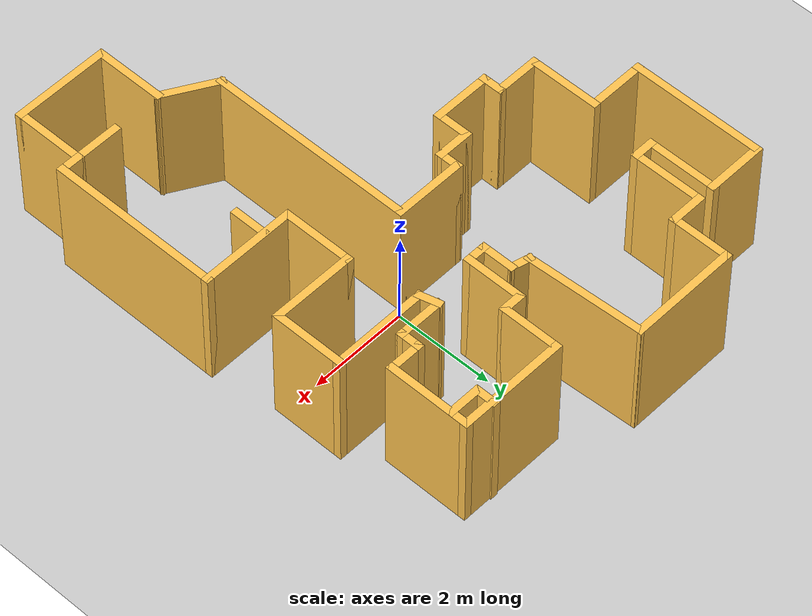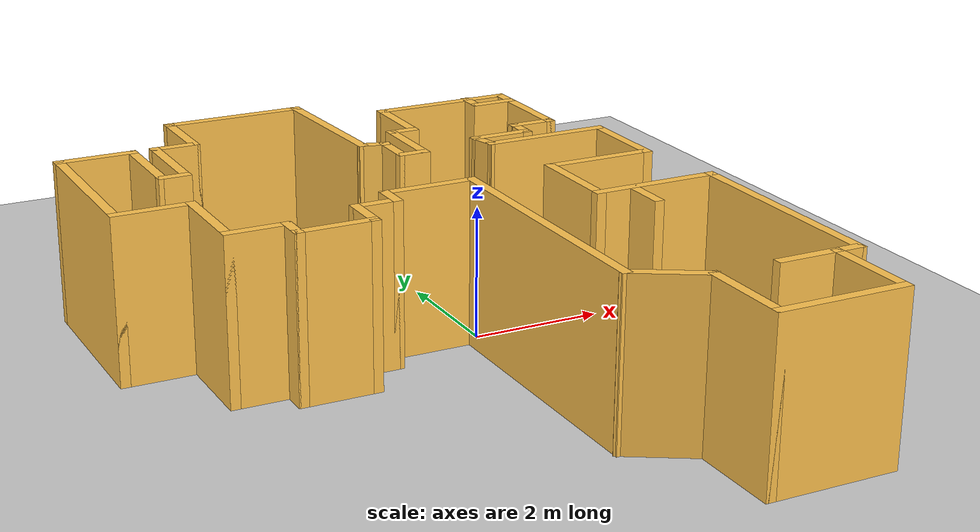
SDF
<sdf version="1.7">
 <world name="default">
  <light name="sun" type="directional">
   <pose>0 0 10 0 -0 0</pose>
   <diffuse>0.8 0.8 0.8 1</diffuse>
   <specular>0.2 0.2 0.2 1</specular>
   <attenuation>
    <range>1000</range>
    <constant>0.9</constant>
    <linear>0.01</linear>
    <quadratic>0.001</quadratic>
   </attenuation>
   <direction>-0.5 0.1 -0.9</direction>
   <spot><inner_angle>0</inner_angle><outer_angle>0</outer_angle><falloff>0</falloff></spot>
  </light>
  <model name="ground_plane">
   <static>1</static>
   <link name="link">
    <collision name="collision">
     <geometry><plane><normal>0 0 1</normal><size>100 100</size></plane></geometry>
     <surface>
      <contact><collide_bitmask>65535</collide_bitmask></contact>
      <friction><ode><mu>100</mu><mu2>50</mu2></ode></friction>
     </surface>
    </collision>
    <visual name="visual">
     <cast_shadows>0</cast_shadows>
     <geometry><plane><normal>0 0 1</normal><size>100 100</size></plane></geometry>
     <material>
      <script><uri>file://media/materials/scripts/gazebo.material</uri><name>Gazebo/Grey</name></script>
     </material>
    </visual>
   </link>
  </model>
  <gravity>0 0 -9.8</gravity>
  <magnetic_field>6e-06 2.3e-05 -4.2e-05</magnetic_field>
  <atmosphere type="adiabatic"/>
  <physics name="default_physics" default="0" type="ode">
   <max_step_size>0.001</max_step_size>
   <real_time_factor>1</real_time_factor>
   <real_time_update_rate>1000</real_time_update_rate>
  </physics>
  <scene><ambient>0.4 0.4 0.4 1</ambient><background>0.7 0.7 0.7 1</background><shadows>1</shadows></scene>
  <audio><device>default</device></audio>
  <spherical_coordinates>
   <surface_model>EARTH_WGS84</surface_model>
   <latitude_deg>0</latitude_deg>
   <longitude_deg>0</longitude_deg>
   <elevation>0</elevation>
   <heading_deg>0</heading_deg>
  </spherical_coordinates>
  <model name="map_54">
   <pose>-1.0858 -0.91829 0 0 -0 0</pose>
   <link name="Wall_0">
    <collision name="Wall_0_Collision">
     <geometry><box><size>2.25 0.15 2.5</size></box></geometry>
     <pose>0 0 1.25 0 -0 0</pose>
    </collision>
    <visual name="Wall_0_Visual">
     <pose>0 0 1.25 0 -0 0</pose>
     <geometry><box><size>2.25 0.15 2.5</size></box></geometry>
     <material>
      <script><uri>file://media/materials/scripts/gazebo.material</uri><name>Gazebo/Grey</name></script>
      <ambient>1 0.764706 0.305882 1</ambient>
     </material>
     <meta><layer>0</layer></meta>
    </visual>
    <pose>-0.976314 5.22301 0 0 -0 3.14159</pose>
   </link>
   <link name="Wall_1">
    <collision name="Wall_1_Collision">
     <geometry><box><size>1.25 0.15 2.5</size></box></geometry>
     <pose>0 0 1.25 0 -0 0</pose>
    </collision>
    <visual name="Wall_1_Visual">
     <pose>0 0 1.25 0 -0 0</pose>
     <geometry><box><size>1.25 0.15 2.5</size></box></geometry>
     <material>
      <script><uri>file://media/materials/scripts/gazebo.material</uri><name>Gazebo/Grey</name></script>
      <ambient>1 0.764706 0.305882 1</ambient>
     </material>
     <meta><layer>0</layer></meta>
    </visual>
    <pose>-2.02631 4.67301 0 0 -0 -1.5708</pose>
   </link>
   <link name="Wall_10">
    <collision name="Wall_10_Collision">
     <geometry><box><size>1.25 0.15 2.5</size></box></geometry>
     <pose>0 0 1.25 0 -0 0</pose>
    </collision>
    <visual name="Wall_10_Visual">
     <pose>0 0 1.25 0 -0 0</pose>
     <geometry><box><size>1.25 0.15 2.5</size></box></geometry>
     <material>
      <script><uri>file://media/materials/scripts/gazebo.material</uri><name>Gazebo/Grey</name></script>
      <ambient>1 0.764706 0.305882 1</ambient>
     </material>
     <meta><layer>0</layer></meta>
    </visual>
    <pose>-3.52631 1.52301 0 0 -0 0</pose>
   </link>
   <link name="Wall_11">
    <collision name="Wall_11_Collision">
     <geometry><box><size>1.5 0.15 2.5</size></box></geometry>
     <pose>0 0 1.25 0 -0 0</pose>
    </collision>
    <visual name="Wall_11_Visual">
     <pose>0 0 1.25 0 -0 0</pose>
     <geometry><box><size>1.5 0.15 2.5</size></box></geometry>
     <material>
      <script><uri>file://media/materials/scripts/gazebo.material</uri><name>Gazebo/Grey</name></script>
      <ambient>1 0.764706 0.305882 1</ambient>
     </material>
     <meta><layer>0</layer></meta>
    </visual>
    <pose>-2.97631 0.848012 0 0 -0 -1.5708</pose>
   </link>
   <link name="Wall_12">
    <collision name="Wall_12_Collision">
     <geometry><box><size>1 0.15 2.5</size></box></geometry>
     <pose>0 0 1.25 0 -0 0</pose>
    </collision>
    <visual name="Wall_12_Visual">
     <pose>0 0 1.25 0 -0 0</pose>
     <geometry><box><size>1 0.15 2.5</size></box></geometry>
     <material>
      <script><uri>file://media/materials/scripts/gazebo.material</uri><name>Gazebo/Grey</name></script>
      <ambient>1 0.764706 0.305882 1</ambient>
     </material>
     <meta><layer>0</layer></meta>
    </visual>
    <pose>-2.55131 0.173012 0 0 -0 0</pose>
   </link>
   <link name="Wall_13">
    <collision name="Wall_13_Collision">
     <geometry><box><size>0.5 0.15 2.5</size></box></geometry>
     <pose>0 0 1.25 0 -0 0</pose>
    </collision>
    <visual name="Wall_13_Visual">
     <pose>0 0 1.25 0 -0 0</pose>
     <geometry><box><size>0.5 0.15 2.5</size></box></geometry>
     <material>
      <script><uri>file://media/materials/scripts/gazebo.material</uri><name>Gazebo/Grey</name></script>
      <ambient>1 0.764706 0.305882 1</ambient>
     </material>
     <meta><layer>0</layer></meta>
    </visual>
    <pose>-2.12631 -0.001988 0 0 -0 -1.5708</pose>
   </link>
   <link name="Wall_14">
    <collision name="Wall_14_Collision">
     <geometry><box><size>1.25 0.15 2.5</size></box></geometry>
     <pose>0 0 1.25 0 -0 0</pose>
    </collision>
    <visual name="Wall_14_Visual">
     <pose>0 0 1.25 0 -0 0</pose>
     <geometry><box><size>1.25 0.15 2.5</size></box></geometry>
     <material>
      <script><uri>file://media/materials/scripts/gazebo.material</uri><name>Gazebo/Grey</name></script>
      <ambient>1 0.764706 0.305882 1</ambient>
     </material>
     <meta><layer>0</layer></meta>
    </visual>
    <pose>-1.57631 -0.176988 0 0 -0 0</pose>
   </link>
   <link name="Wall_15">
    <collision name="Wall_15_Collision">
     <geometry><box><size>0.75 0.15 2.5</size></box></geometry>
     <pose>0 0 1.25 0 -0 0</pose>
    </collision>
    <visual name="Wall_15_Visual">
     <pose>0 0 1.25 0 -0 0</pose>
     <geometry><box><size>0.75 0.15 2.5</size></box></geometry>
     <material>
      <script><uri>file://media/materials/scripts/gazebo.material</uri><name>Gazebo/Grey</name></script>
      <ambient>1 0.764706 0.305882 1</ambient>
     </material>
     <meta><layer>0</layer></meta>
    </visual>
    <pose>-1.02631 0.123012 0 0 -0 1.5708</pose>
   </link>
   <link name="Wall_16">
    <collision name="Wall_16_Collision">
     <geometry><box><size>0.75 0.15 2.5</size></box></geometry>
     <pose>0 0 1.25 0 -0 0</pose>
    </collision>
    <visual name="Wall_16_Visual">
     <pose>0 0 1.25 0 -0 0</pose>
     <geometry><box><size>0.75 0.15 2.5</size></box></geometry>
     <material>
      <script><uri>file://media/materials/scripts/gazebo.material</uri><name>Gazebo/Grey</name></script>
      <ambient>1 0.764706 0.305882 1</ambient>
     </material>
     <meta><layer>0</layer></meta>
    </visual>
    <pose>-0.726314 0.423012 0 0 -0 0</pose>
   </link>
   <link name="Wall_17">
    <collision name="Wall_17_Collision">
     <geometry><box><size>0.5 0.15 2.5</size></box></geometry>
     <pose>0 0 1.25 0 -0 0</pose>
    </collision>
    <visual name="Wall_17_Visual">
     <pose>0 0 1.25 0 -0 0</pose>
     <geometry><box><size>0.5 0.15 2.5</size></box></geometry>
     <material>
      <script><uri>file://media/materials/scripts/gazebo.material</uri><name>Gazebo/Grey</name></script>
      <ambient>1 0.764706 0.305882 1</ambient>
     </material>
     <meta><layer>0</layer></meta>
    </visual>
    <pose>-0.426314 0.598012 0 0 -0 1.5708</pose>
   </link>
   <link name="Wall_18">
    <collision name="Wall_18_Collision">
     <geometry><box><size>1.5 0.15 2.5</size></box></geometry>
     <pose>0 0 1.25 0 -0 0</pose>
    </collision>
    <visual name="Wall_18_Visual">
     <pose>0 0 1.25 0 -0 0</pose>
     <geometry><box><size>1.5 0.15 2.5</size></box></geometry>
     <material>
      <script><uri>file://media/materials/scripts/gazebo.material</uri><name>Gazebo/Grey</name></script>
      <ambient>1 0.764706 0.305882 1</ambient>
     </material>
     <meta><layer>0</layer></meta>
    </visual>
    <pose>0.248686 0.773012 0 0 -0 0</pose>
   </link>
   <link name="Wall_19">
    <collision name="Wall_19_Collision">
     <geometry><box><size>4.25 0.15 2.5</size></box></geometry>
     <pose>0 0 1.25 0 -0 0</pose>
    </collision>
    <visual name="Wall_19_Visual">
     <pose>0 0 1.25 0 -0 0</pose>
     <geometry><box><size>4.25 0.15 2.5</size></box></geometry>
     <material>
      <script><uri>file://media/materials/scripts/gazebo.material</uri><name>Gazebo/Grey</name></script>
      <ambient>1 0.764706 0.305882 1</ambient>
     </material>
     <meta><layer>0</layer></meta>
    </visual>
    <pose>0.923686 -1.27699 0 0 -0 -1.5708</pose>
   </link>
   <link name="Wall_20">
    <collision name="Wall_20_Collision">
     <geometry><box><size>1.25 0.15 2.5</size></box></geometry>
     <pose>0 0 1.25 0 -0 0</pose>
    </collision>
    <visual name="Wall_20_Visual">
     <pose>0 0 1.25 0 -0 0</pose>
     <geometry><box><size>1.25 0.15 2.5</size></box></geometry>
     <material>
      <script><uri>file://media/materials/scripts/gazebo.material</uri><name>Gazebo/Grey</name></script>
      <ambient>1 0.764706 0.305882 1</ambient>
     </material>
     <meta><layer>0</layer></meta>
    </visual>
    <pose>1.4 -3.60199 0 0 -0 -0.523599</pose>
   </link>
   <link name="Wall_21">
    <collision name="Wall_21_Collision">
     <geometry><box><size>1.5 0.15 2.5</size></box></geometry>
     <pose>0 0 1.25 0 -0 0</pose>
    </collision>
    <visual name="Wall_21_Visual">
     <pose>0 0 1.25 0 -0 0</pose>
     <geometry><box><size>1.5 0.15 2.5</size></box></geometry>
     <material>
      <script><uri>file://media/materials/scripts/gazebo.material</uri><name>Gazebo/Grey</name></script>
      <ambient>1 0.764706 0.305882 1</ambient>
     </material>
     <meta><layer>0</layer></meta>
    </visual>
    <pose>1.87631 -4.55199 0 0 -0 -1.5708</pose>
   </link>
   <link name="Wall_22">
    <collision name="Wall_22_Collision">
     <geometry><box><size>2 0.15 2.5</size></box></geometry>
     <pose>0 0 1.25 0 -0 0</pose>
    </collision>
    <visual name="Wall_22_Visual">
     <pose>0 0 1.25 0 -0 0</pose>
     <geometry><box><size>2 0.15 2.5</size></box></geometry>
     <material>
      <script><uri>file://media/materials/scripts/gazebo.material</uri><name>Gazebo/Grey</name></script>
      <ambient>1 0.764706 0.305882 1</ambient>
     </material>
     <meta><layer>0</layer></meta>
    </visual>
    <pose>2.80131 -5.22699 0 0 -0 0</pose>
   </link>
   <link name="Wall_23">
    <collision name="Wall_23_Collision">
     <geometry><box><size>1.5 0.15 2.5</size></box></geometry>
     <pose>0 0 1.25 0 -0 0</pose>
    </collision>
    <visual name="Wall_23_Visual">
     <pose>0 0 1.25 0 -0 0</pose>
     <geometry><box><size>1.5 0.15 2.5</size></box></geometry>
     <material>
      <script><uri>file://media/materials/scripts/gazebo.material</uri><name>Gazebo/Grey</name></script>
      <ambient>1 0.764706 0.305882 1</ambient>
     </material>
     <meta><layer>0</layer></meta>
    </visual>
    <pose>3.72631 -4.55199 0 0 -0 1.5708</pose>
   </link>
   <link name="Wall_24">
    <collision name="Wall_24_Collision">
     <geometry><box><size>0.5 0.15 2.5</size></box></geometry>
     <pose>0 0 1.25 0 -0 0</pose>
    </collision>
    <visual name="Wall_24_Visual">
     <pose>0 0 1.25 0 -0 0</pose>
     <geometry><box><size>0.5 0.15 2.5</size></box></geometry>
     <material>
      <script><uri>file://media/materials/scripts/gazebo.material</uri><name>Gazebo/Grey</name></script>
      <ambient>1 0.764706 0.305882 1</ambient>
     </material>
     <meta><layer>0</layer></meta>
    </visual>
    <pose>3.90131 -3.87699 0 0 -0 0</pose>
   </link>
   <link name="Wall_25">
    <collision name="Wall_25_Collision">
     <geometry><box><size>3.5 0.15 2.5</size></box></geometry>
     <pose>0 0 1.25 0 -0 0</pose>
    </collision>
    <visual name="Wall_25_Visual">
     <pose>0 0 1.25 0 -0 0</pose>
     <geometry><box><size>3.5 0.15 2.5</size></box></geometry>
     <material>
      <script><uri>file://media/materials/scripts/gazebo.material</uri><name>Gazebo/Grey</name></script>
      <ambient>1 0.764706 0.305882 1</ambient>
     </material>
     <meta><layer>0</layer></meta>
    </visual>
    <pose>4.07631 -2.20199 0 0 -0 1.5708</pose>
   </link>
   <link name="Wall_26">
    <collision name="Wall_26_Collision">
     <geometry><box><size>2 0.15 2.5</size></box></geometry>
     <pose>0 0 1.25 0 -0 0</pose>
    </collision>
    <visual name="Wall_26_Visual">
     <pose>0 0 1.25 0 -0 0</pose>
     <geometry><box><size>2 0.15 2.5</size></box></geometry>
     <material>
      <script><uri>file://media/materials/scripts/gazebo.material</uri><name>Gazebo/Grey</name></script>
      <ambient>1 0.764706 0.305882 1</ambient>
     </material>
     <meta><layer>0</layer></meta>
    </visual>
    <pose>3.15131 -0.526988 0 0 -0 3.14159</pose>
   </link>
   <link name="Wall_27">
    <collision name="Wall_27_Collision">
     <geometry><box><size>1.5 0.15 2.5</size></box></geometry>
     <pose>0 0 1.25 0 -0 0</pose>
    </collision>
    <visual name="Wall_27_Visual">
     <pose>0 0 1.25 0 -0 0</pose>
     <geometry><box><size>1.5 0.15 2.5</size></box></geometry>
     <material>
      <script><uri>file://media/materials/scripts/gazebo.material</uri><name>Gazebo/Grey</name></script>
      <ambient>1 0.764706 0.305882 1</ambient>
     </material>
     <meta><layer>0</layer></meta>
    </visual>
    <pose>2.22631 0.148012 0 0 -0 1.5708</pose>
   </link>
   <link name="Wall_28">
    <collision name="Wall_28_Collision">
     <geometry><box><size>1.75 0.15 2.5</size></box></geometry>
     <pose>0 0 1.25 0 -0 0</pose>
    </collision>
    <visual name="Wall_28_Visual">
     <pose>0 0 1.25 0 -0 0</pose>
     <geometry><box><size>1.75 0.15 2.5</size></box></geometry>
     <material>
      <script><uri>file://media/materials/scripts/gazebo.material</uri><name>Gazebo/Grey</name></script>
      <ambient>1 0.764706 0.305882 1</ambient>
     </material>
     <meta><layer>0</layer></meta>
    </visual>
    <pose>3.02631 0.823012 0 0 -0 0</pose>
   </link>
   <link name="Wall_29">
    <collision name="Wall_29_Collision">
     <geometry><box><size>1.5 0.15 2.5</size></box></geometry>
     <pose>0 0 1.25 0 -0 0</pose>
    </collision>
    <visual name="Wall_29_Visual">
     <pose>0 0 1.25 0 -0 0</pose>
     <geometry><box><size>1.5 0.15 2.5</size></box></geometry>
     <material>
      <script><uri>file://media/materials/scripts/gazebo.material</uri><name>Gazebo/Grey</name></script>
      <ambient>1 0.764706 0.305882 1</ambient>
     </material>
     <meta><layer>0</layer></meta>
    </visual>
    <pose>3.82631 1.49801 0 0 -0 1.5708</pose>
   </link>
   <link name="Wall_30">
    <collision name="Wall_30_Collision">
     <geometry><box><size>2 0.15 2.5</size></box></geometry>
     <pose>0 0 1.25 0 -0 0</pose>
    </collision>
    <visual name="Wall_30_Visual">
     <pose>0 0 1.25 0 -0 0</pose>
     <geometry><box><size>2 0.15 2.5</size></box></geometry>
     <material>
      <script><uri>file://media/materials/scripts/gazebo.material</uri><name>Gazebo/Grey</name></script>
      <ambient>1 0.764706 0.305882 1</ambient>
     </material>
     <meta><layer>0</layer></meta>
    </visual>
    <pose>2.90131 2.17301 0 0 -0 3.14159</pose>
   </link>
   <link name="Wall_31">
    <collision name="Wall_31_Collision">
     <geometry><box><size>0.5 0.15 2.5</size></box></geometry>
     <pose>0 0 1.25 0 -0 0</pose>
    </collision>
    <visual name="Wall_31_Visual">
     <pose>0 0 1.25 0 -0 0</pose>
     <geometry><box><size>0.5 0.15 2.5</size></box></geometry>
     <material>
      <script><uri>file://media/materials/scripts/gazebo.material</uri><name>Gazebo/Grey</name></script>
      <ambient>1 0.764706 0.305882 1</ambient>
     </material>
     <meta><layer>0</layer></meta>
    </visual>
    <pose>1.93102 2.34205 0 0 -0 1.8326</pose>
   </link>
   <link name="Wall_32">
    <collision name="Wall_32_Collision">
     <geometry><box><size>1 0.15 2.5</size></box></geometry>
     <pose>0 0 1.25 0 -0 0</pose>
    </collision>
    <visual name="Wall_32_Visual">
     <pose>0 0 1.25 0 -0 0</pose>
     <geometry><box><size>1 0.15 2.5</size></box></geometry>
     <material>
      <script><uri>file://media/materials/scripts/gazebo.material</uri><name>Gazebo/Grey</name></script>
      <ambient>1 0.764706 0.305882 1</ambient>
     </material>
     <meta><layer>0</layer></meta>
    </visual>
    <pose>2.31073 2.51109 0 0 -0 0</pose>
   </link>
   <link name="Wall_33">
    <collision name="Wall_33_Collision">
     <geometry><box><size>0.5 0.15 2.5</size></box></geometry>
     <pose>0 0 1.25 0 -0 0</pose>
    </collision>
    <visual name="Wall_33_Visual">
     <pose>0 0 1.25 0 -0 0</pose>
     <geometry><box><size>0.5 0.15 2.5</size></box></geometry>
     <material>
      <script><uri>file://media/materials/scripts/gazebo.material</uri><name>Gazebo/Grey</name></script>
      <ambient>1 0.764706 0.305882 1</ambient>
     </material>
     <meta><layer>0</layer></meta>
    </visual>
    <pose>2.73573 2.68609 0 0 -0 1.5708</pose>
   </link>
   <link name="Wall_34">
    <collision name="Wall_34_Collision">
     <geometry><box><size>0.75 0.15 2.5</size></box></geometry>
     <pose>0 0 1.25 0 -0 0</pose>
    </collision>
    <visual name="Wall_34_Visual">
     <pose>0 0 1.25 0 -0 0</pose>
     <geometry><box><size>0.75 0.15 2.5</size></box></geometry>
     <material>
      <script><uri>file://media/materials/scripts/gazebo.material</uri><name>Gazebo/Grey</name></script>
      <ambient>1 0.764706 0.305882 1</ambient>
     </material>
     <meta><layer>0</layer></meta>
    </visual>
    <pose>3.03573 2.86109 0 0 -0 0</pose>
   </link>
   <link name="Wall_35">
    <collision name="Wall_35_Collision">
     <geometry><box><size>1.75 0.15 2.5</size></box></geometry>
     <pose>0 0 1.25 0 -0 0</pose>
    </collision>
    <visual name="Wall_35_Visual">
     <pose>0 0 1.25 0 -0 0</pose>
     <geometry><box><size>1.75 0.15 2.5</size></box></geometry>
     <material>
      <script><uri>file://media/materials/scripts/gazebo.material</uri><name>Gazebo/Grey</name></script>
      <ambient>1 0.764706 0.305882 1</ambient>
     </material>
     <meta><layer>0</layer></meta>
    </visual>
    <pose>3.33573 3.66109 0 0 -0 1.5708</pose>
   </link>
   <link name="Wall_36">
    <collision name="Wall_36_Collision">
     <geometry><box><size>2.25 0.15 2.5</size></box></geometry>
     <pose>0 0 1.25 0 -0 0</pose>
    </collision>
    <visual name="Wall_36_Visual">
     <pose>0 0 1.25 0 -0 0</pose>
     <geometry><box><size>2.25 0.15 2.5</size></box></geometry>
     <material>
      <script><uri>file://media/materials/scripts/gazebo.material</uri><name>Gazebo/Grey</name></script>
      <ambient>1 0.764706 0.305882 1</ambient>
     </material>
     <meta><layer>0</layer></meta>
    </visual>
    <pose>2.28573 4.46109 0 0 -0 3.14159</pose>
   </link>
   <link name="Wall_37">
    <collision name="Wall_37_Collision">
     <geometry><box><size>1.25 0.15 2.5</size></box></geometry>
     <pose>0 0 1.25 0 -0 0</pose>
    </collision>
    <visual name="Wall_37_Visual">
     <pose>0 0 1.25 0 -0 0</pose>
     <geometry><box><size>1.25 0.15 2.5</size></box></geometry>
     <material>
      <script><uri>file://media/materials/scripts/gazebo.material</uri><name>Gazebo/Grey</name></script>
      <ambient>1 0.764706 0.305882 1</ambient>
     </material>
     <meta><layer>0</layer></meta>
    </visual>
    <pose>1.23573 3.91109 0 0 -0 -1.5708</pose>
   </link>
   <link name="Wall_38">
    <collision name="Wall_38_Collision">
     <geometry><box><size>0.5 0.15 2.5</size></box></geometry>
     <pose>0 0 1.25 0 -0 0</pose>
    </collision>
    <visual name="Wall_38_Visual">
     <pose>0 0 1.25 0 -0 0</pose>
     <geometry><box><size>0.5 0.15 2.5</size></box></geometry>
     <material>
      <script><uri>file://media/materials/scripts/gazebo.material</uri><name>Gazebo/Grey</name></script>
      <ambient>1 0.764706 0.305882 1</ambient>
     </material>
     <meta><layer>0</layer></meta>
    </visual>
    <pose>1.06073 3.36109 0 0 -0 3.14159</pose>
   </link>
   <link name="Wall_39">
    <collision name="Wall_39_Collision">
     <geometry><box><size>1.25 0.15 2.5</size></box></geometry>
     <pose>0 0 1.25 0 -0 0</pose>
    </collision>
    <visual name="Wall_39_Visual">
     <pose>0 0 1.25 0 -0 0</pose>
     <geometry><box><size>1.25 0.15 2.5</size></box></geometry>
     <material>
      <script><uri>file://media/materials/scripts/gazebo.material</uri><name>Gazebo/Grey</name></script>
      <ambient>1 0.764706 0.305882 1</ambient>
     </material>
     <meta><layer>0</layer></meta>
    </visual>
    <pose>0.885727 2.81109 0 0 -0 -1.5708</pose>
   </link>
   <link name="Wall_4">
    <collision name="Wall_4_Collision">
     <geometry><box><size>0.75 0.15 2.5</size></box></geometry>
     <pose>0 0 1.25 0 -0 0</pose>
    </collision>
    <visual name="Wall_4_Visual">
     <pose>0 0 1.25 0 -0 0</pose>
     <geometry><box><size>0.75 0.15 2.5</size></box></geometry>
     <material>
      <script><uri>file://media/materials/scripts/gazebo.material</uri><name>Gazebo/Grey</name></script>
      <ambient>1 0.764706 0.305882 1</ambient>
     </material>
     <meta><layer>0</layer></meta>
    </visual>
    <pose>-2.32631 4.12301 0 0 -0 3.14159</pose>
   </link>
   <link name="Wall_40">
    <collision name="Wall_40_Collision">
     <geometry><box><size>0.5 0.15 2.5</size></box></geometry>
     <pose>0 0 1.25 0 -0 0</pose>
    </collision>
    <visual name="Wall_40_Visual">
     <pose>0 0 1.25 0 -0 0</pose>
     <geometry><box><size>0.5 0.15 2.5</size></box></geometry>
     <material>
      <script><uri>file://media/materials/scripts/gazebo.material</uri><name>Gazebo/Grey</name></script>
      <ambient>1 0.764706 0.305882 1</ambient>
     </material>
     <meta><layer>0</layer></meta>
    </visual>
    <pose>0.710727 2.26109 0 0 -0 3.14159</pose>
   </link>
   <link name="Wall_41">
    <collision name="Wall_41_Collision">
     <geometry><box><size>0.75 0.15 2.5</size></box></geometry>
     <pose>0 0 1.25 0 -0 0</pose>
    </collision>
    <visual name="Wall_41_Visual">
     <pose>0 0 1.25 0 -0 0</pose>
     <geometry><box><size>0.75 0.15 2.5</size></box></geometry>
     <material>
      <script><uri>file://media/materials/scripts/gazebo.material</uri><name>Gazebo/Grey</name></script>
      <ambient>1 0.764706 0.305882 1</ambient>
     </material>
     <meta><layer>0</layer></meta>
    </visual>
    <pose>0.535727 2.56109 0 0 -0 1.5708</pose>
   </link>
   <link name="Wall_42">
    <collision name="Wall_42_Collision">
     <geometry><box><size>0.5 0.15 2.5</size></box></geometry>
     <pose>0 0 1.25 0 -0 0</pose>
    </collision>
    <visual name="Wall_42_Visual">
     <pose>0 0 1.25 0 -0 0</pose>
     <geometry><box><size>0.5 0.15 2.5</size></box></geometry>
     <material>
      <script><uri>file://media/materials/scripts/gazebo.material</uri><name>Gazebo/Grey</name></script>
      <ambient>1 0.764706 0.305882 1</ambient>
     </material>
     <meta><layer>0</layer></meta>
    </visual>
    <pose>0.36669 2.90638 0 0 -0 2.87979</pose>
   </link>
   <link name="Wall_43">
    <collision name="Wall_43_Collision">
     <geometry><box><size>2.42472 0.15 2.5</size></box></geometry>
     <pose>0 0 1.25 0 -0 0</pose>
    </collision>
    <visual name="Wall_43_Visual">
     <pose>0 0 1.25 0 -0 0</pose>
     <geometry><box><size>2.42472 0.15 2.5</size></box></geometry>
     <material>
      <script><uri>file://media/materials/scripts/gazebo.material</uri><name>Gazebo/Grey</name></script>
      <ambient>1 0.764706 0.305882 1</ambient>
     </material>
     <meta><layer>0</layer></meta>
    </visual>
    <pose>0.13567 4.08734 0 0 -0 1.62532</pose>
   </link>
   <link name="Wall_45">
    <collision name="Wall_45_Collision">
     <geometry><box><size>0.75 0.15 2.5</size></box></geometry>
     <pose>0 0 1.25 0 -0 0</pose>
    </collision>
    <visual name="Wall_45_Visual">
     <pose>0 0 1.25 0 -0 0</pose>
     <geometry><box><size>0.75 0.15 2.5</size></box></geometry>
     <material>
      <script><uri>file://media/materials/scripts/gazebo.material</uri><name>Gazebo/Grey</name></script>
      <ambient>1 0.764706 0.305882 1</ambient>
     </material>
     <meta><layer>0</layer></meta>
    </visual>
    <pose>2.76563 -0.858541 0 0 -0 -1.5708</pose>
   </link>
   <link name="Wall_47">
    <collision name="Wall_47_Collision">
     <geometry><box><size>1 0.15 2.5</size></box></geometry>
     <pose>0 0 1.25 0 -0 0</pose>
    </collision>
    <visual name="Wall_47_Visual">
     <pose>0 0 1.25 0 -0 0</pose>
     <geometry><box><size>1 0.15 2.5</size></box></geometry>
     <material>
      <script><uri>file://media/materials/scripts/gazebo.material</uri><name>Gazebo/Grey</name></script>
      <ambient>1 0.764706 0.305882 1</ambient>
     </material>
     <meta><layer>0</layer></meta>
    </visual>
    <pose>3.30131 -3.87699 0 0 -0 3.14159</pose>
   </link>
   <link name="Wall_49">
    <collision name="Wall_49_Collision">
     <geometry><box><size>0.5 0.15 2.5</size></box></geometry>
     <pose>0 0 1.25 0 -0 0</pose>
    </collision>
    <visual name="Wall_49_Visual">
     <pose>0 0 1.25 0 -0 0</pose>
     <geometry><box><size>0.5 0.15 2.5</size></box></geometry>
     <material>
      <script><uri>file://media/materials/scripts/gazebo.material</uri><name>Gazebo/Grey</name></script>
      <ambient>1 0.764706 0.305882 1</ambient>
     </material>
     <meta><layer>0</layer></meta>
    </visual>
    <pose>2.73504 4.31385 0 0 -0 -1.5708</pose>
   </link>
   <link name="Wall_5">
    <collision name="Wall_5_Collision">
     <geometry><box><size>1.5 0.15 2.5</size></box></geometry>
     <pose>0 0 1.25 0 -0 0</pose>
    </collision>
    <visual name="Wall_5_Visual">
     <pose>0 0 1.25 0 -0 0</pose>
     <geometry><box><size>1.5 0.15 2.5</size></box></geometry>
     <material>
      <script><uri>file://media/materials/scripts/gazebo.material</uri><name>Gazebo/Grey</name></script>
      <ambient>1 0.764706 0.305882 1</ambient>
     </material>
     <meta><layer>0</layer></meta>
    </visual>
    <pose>-2.62631 3.44801 0 0 -0 -1.5708</pose>
   </link>
   <link name="Wall_50">
    <collision name="Wall_50_Collision">
     <geometry><box><size>0.75 0.15 2.5</size></box></geometry>
     <pose>0 0 1.25 0 -0 0</pose>
    </collision>
    <visual name="Wall_50_Visual">
     <pose>0 0 1.25 0 -0 0</pose>
     <geometry><box><size>0.75 0.15 2.5</size></box></geometry>
     <material>
      <script><uri>file://media/materials/scripts/gazebo.material</uri><name>Gazebo/Grey</name></script>
      <ambient>1 0.764706 0.305882 1</ambient>
     </material>
     <meta><layer>0</layer></meta>
    </visual>
    <pose>3.03504 4.13885 0 0 -0 0</pose>
   </link>
   <link name="Wall_6">
    <collision name="Wall_6_Collision">
     <geometry><box><size>0.5 0.15 2.5</size></box></geometry>
     <pose>0 0 1.25 0 -0 0</pose>
    </collision>
    <visual name="Wall_6_Visual">
     <pose>0 0 1.25 0 -0 0</pose>
     <geometry><box><size>0.5 0.15 2.5</size></box></geometry>
     <material>
      <script><uri>file://media/materials/scripts/gazebo.material</uri><name>Gazebo/Grey</name></script>
      <ambient>1 0.764706 0.305882 1</ambient>
     </material>
     <meta><layer>0</layer></meta>
    </visual>
    <pose>-2.80131 2.77301 0 0 -0 3.14159</pose>
   </link>
   <link name="Wall_7">
    <collision name="Wall_7_Collision">
     <geometry><box><size>1.5 0.15 2.5</size></box></geometry>
     <pose>0 0 1.25 0 -0 0</pose>
    </collision>
    <visual name="Wall_7_Visual">
     <pose>0 0 1.25 0 -0 0</pose>
     <geometry><box><size>1.5 0.15 2.5</size></box></geometry>
     <material>
      <script><uri>file://media/materials/scripts/gazebo.material</uri><name>Gazebo/Grey</name></script>
      <ambient>1 0.764706 0.305882 1</ambient>
     </material>
     <meta><layer>0</layer></meta>
    </visual>
    <pose>-2.97631 3.44801 0 0 -0 1.5708</pose>
   </link>
   <link name="Wall_8">
    <collision name="Wall_8_Collision">
     <geometry><box><size>1.25 0.15 2.5</size></box></geometry>
     <pose>0 0 1.25 0 -0 0</pose>
    </collision>
    <visual name="Wall_8_Visual">
     <pose>0 0 1.25 0 -0 0</pose>
     <geometry><box><size>1.25 0.15 2.5</size></box></geometry>
     <material>
      <script><uri>file://media/materials/scripts/gazebo.material</uri><name>Gazebo/Grey</name></script>
      <ambient>1 0.764706 0.305882 1</ambient>
     </material>
     <meta><layer>0</layer></meta>
    </visual>
    <pose>-3.52631 4.12301 0 0 -0 3.14159</pose>
   </link>
   <link name="Wall_9">
    <collision name="Wall_9_Collision">
     <geometry><box><size>2.75 0.15 2.5</size></box></geometry>
     <pose>0 0 1.25 0 -0 0</pose>
    </collision>
    <visual name="Wall_9_Visual">
     <pose>0 0 1.25 0 -0 0</pose>
     <geometry><box><size>2.75 0.15 2.5</size></box></geometry>
     <material>
      <script><uri>file://media/materials/scripts/gazebo.material</uri><name>Gazebo/Grey</name></script>
      <ambient>1 0.764706 0.305882 1</ambient>
     </material>
     <meta><layer>0</layer></meta>
    </visual>
    <pose>-4.07631 2.82301 0 0 -0 -1.5708</pose>
   </link>
   <static>1</static>
  </model>
 </world>
</sdf>
